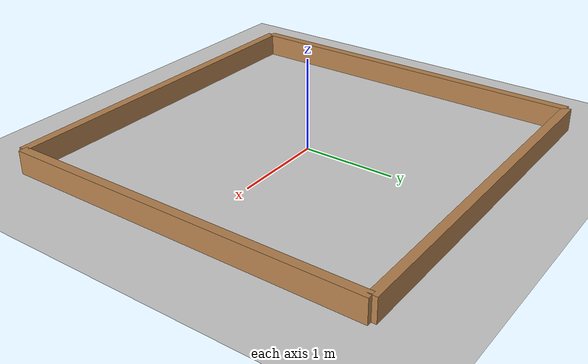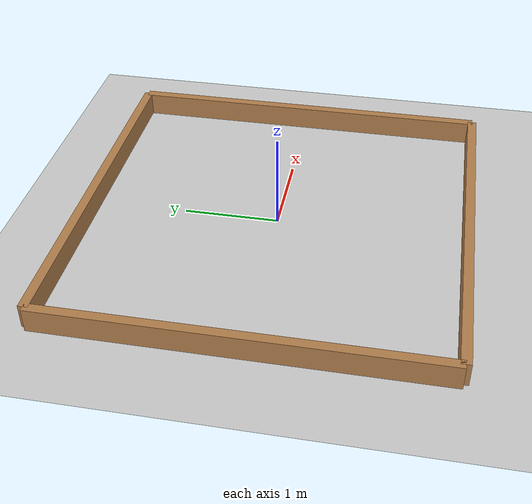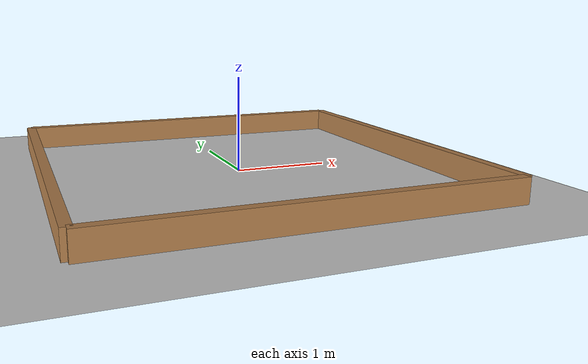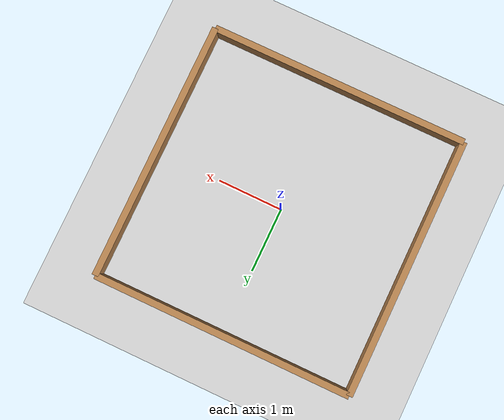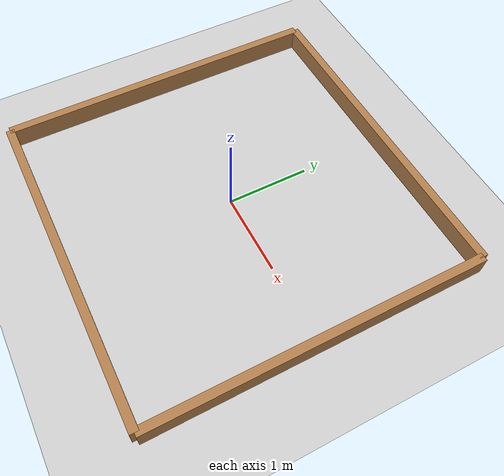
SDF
<sdf version="1.6">
 <world name="custom_world">
  <light name="sun" type="directional">
   <pose>0 0 10 0 0 0</pose>
   <diffuse>0.8 0.8 0.8 1</diffuse>
   <specular>0.2 0.2 0.2 1</specular>
   <direction>-0.5 0.1 -0.9</direction>
  </light>
  <model name="ground_plane">
   <static>1</static>
   <link name="link">
    <collision name="collision">
     <geometry><plane><normal>0 0 1</normal><size>100 100</size></plane></geometry>
    </collision>
    <visual name="visual">
     <geometry><plane><normal>0 0 1</normal><size>100 100</size></plane></geometry>
     <material>
      <script><uri>file://media/materials/scripts/gazebo.material</uri><name>Gazebo/Grey</name></script>
     </material>
    </visual>
   </link>
  </model>
  <model name="wall_north">
   <pose>0 2 0 0 0 0</pose>
   <link name="link">
    <collision name="collision"><geometry><box><size>4 0.1 0.5</size></box></geometry></collision>
    <visual name="visual">
     <geometry><box><size>4 0.1 0.5</size></box></geometry>
     <material>
      <script><uri>file://media/materials/scripts/gazebo.material</uri><name>Gazebo/Wood</name></script>
     </material>
    </visual>
   </link>
   <static>1</static>
  </model>
  <model name="wall_south">
   <pose>0 -2 0 0 0 0</pose>
   <link name="link">
    <collision name="collision"><geometry><box><size>4 0.1 0.5</size></box></geometry></collision>
    <visual name="visual">
     <geometry><box><size>4 0.1 0.5</size></box></geometry>
     <material>
      <script><uri>file://media/materials/scripts/gazebo.material</uri><name>Gazebo/Wood</name></script>
     </material>
    </visual>
   </link>
   <static>1</static>
  </model>
  <model name="wall_east">
   <pose>2 0 0 0 0 1.5708</pose>
   <link name="link">
    <collision name="collision"><geometry><box><size>4 0.1 0.5</size></box></geometry></collision>
    <visual name="visual">
     <geometry><box><size>4 0.1 0.5</size></box></geometry>
     <material>
      <script><uri>file://media/materials/scripts/gazebo.material</uri><name>Gazebo/Wood</name></script>
     </material>
    </visual>
   </link>
   <static>1</static>
  </model>
  <model name="wall_west">
   <pose>-2 0 0 0 0 1.5708</pose>
   <link name="link">
    <collision name="collision"><geometry><box><size>4 0.1 0.5</size></box></geometry></collision>
    <visual name="visual">
     <geometry><box><size>4 0.1 0.5</size></box></geometry>
     <material>
      <script><uri>file://media/materials/scripts/gazebo.material</uri><name>Gazebo/Wood</name></script>
     </material>
    </visual>
   </link>
   <static>1</static>
  </model>
  <gravity>0 0 -9.8</gravity>
  <physics name="default_physics" type="ode">
   <max_step_size>0.001</max_step_size>
   <real_time_factor>1</real_time_factor>
   <real_time_update_rate>1000</real_time_update_rate>
  </physics>
 </world>
</sdf>
